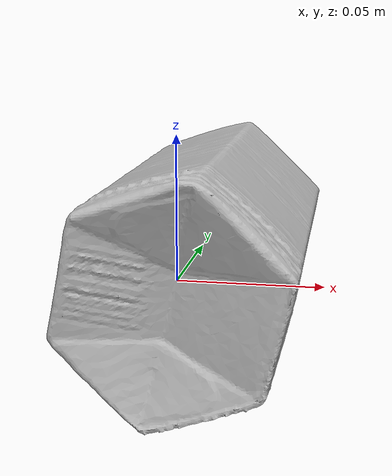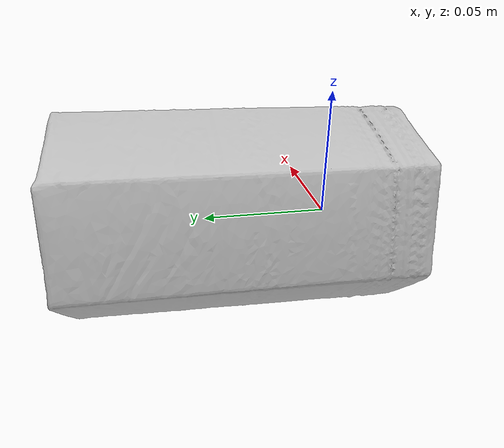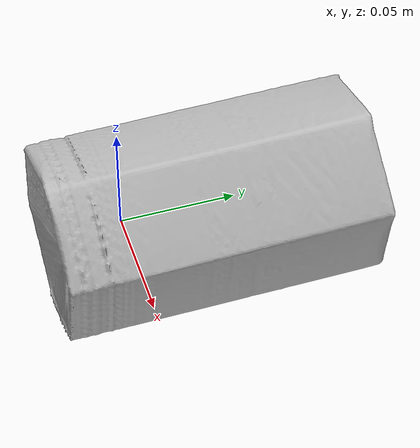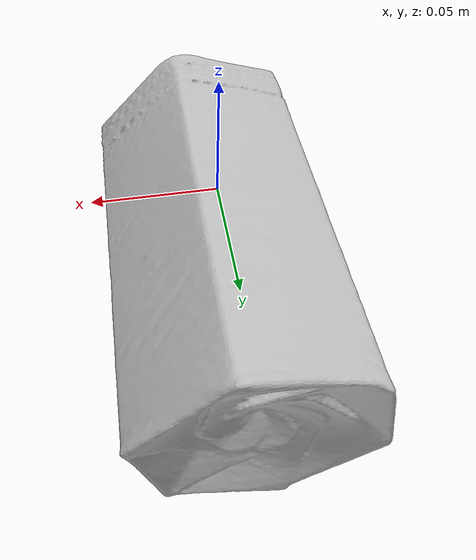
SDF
<?xml version='1.0'?>
<sdf version="1.4">
  <model name="Wafflerolls">
    <static>false</static>
    <link name="link">
      <inertial>
        <pose>0.002944914955947364 0.03696510123365316 0.0008495530054181134 -1.5902268325704516 0.1893587497290282 3.136025626051874</pose>
        <mass>0.06866073425296798</mass>
        <inertia>
          <ixx>0.00013900266229666838</ixx>
          <ixy>4.818309468864228e-22</ixy>
          <ixz>-6.768277632525682e-23</ixz>
          <iyy>0.0001380260211751598</iyy>
          <iyz>-1.1612300013634929e-20</iyz>
          <izz>5.381700762210136e-05</izz>
        </inertia>
      </inertial>
      <collision name="collision">
        <geometry>
          <mesh>
            <!-- Use a downsampled mesh for collisions -->
            <uri>model:///Wafflerolls/Wafflerolls_250_collision.obj</uri>
	        </mesh>
        </geometry>
        <surface>
      </surface>
      </collision>
      <visual name="visual">
        <geometry>
          <mesh>
            <uri>model:///Wafflerolls/Wafflerolls_25k_tex.obj</uri>
	        </mesh>
        </geometry>
        <material>
          <script>
            <uri>model:///Wafflerolls/Wafflerolls.material</uri>
            <name>Wafflerolls</name>
          </script>
        </material>
      </visual>
    </link>
  </model>
</sdf>
